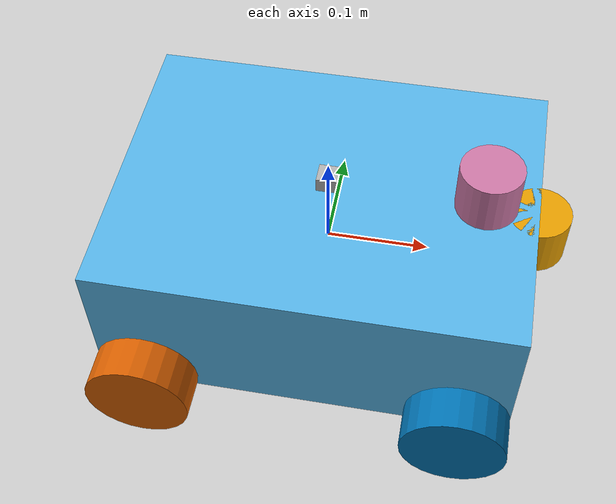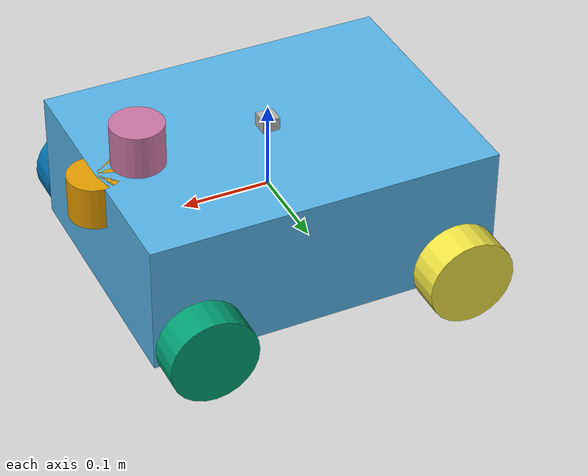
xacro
<?xml version="1.0"?>
<robot name="agric_orion" xmlns:xacro="http://www.ros.org/wiki/xacro">

  <xacro:property name="wheel_radius" value="0.05"/>
  <xacro:property name="wheel_length" value="0.04"/>
  <xacro:property name="wheel_mass" value="0.5"/>
  <xacro:property name="wheel_separation" value="0.35"/>
  <xacro:property name="wheel_base" value="0.3"/>

  <!-- Root link: massless, per KDL requirement that root links carry no inertia -->
  <link name="base_footprint"/>

  <joint name="base_footprint_joint" type="fixed">

    <parent link="base_footprint"/>
    <child link="base_link"/>
    <origin xyz="0 0 0" rpy="0 0 0"/>
  </joint>

  <link name="base_link">

    <visual>
      <origin xyz="0 0 0" rpy="0 0 0"/>
      <geometry><box size="0.4 0.3 0.15"/></geometry>
    </visual>
    <collision>
      <origin xyz="0 0 0" rpy="0 0 0"/>
      <geometry><box size="0.4 0.3 0.15"/></geometry>
    </collision>
    <inertial>
      <mass value="5.0"/>
      <origin xyz="0 0 0"/>
      <inertia ixx="0.05" ixy="0" ixz="0" iyy="0.08" iyz="0" izz="0.1"/>
    </inertial>
  </link>

  <xacro:macro name="wheel" params="prefix reflect x_offset">

    <link name="${prefix}_wheel">
      <visual>
        <origin xyz="0 0 0" rpy="1.5708 0 0"/>
        <geometry><cylinder radius="${wheel_radius}" length="${wheel_length}"/></geometry>
      </visual>
      <collision>
        <origin xyz="0 0 0" rpy="1.5708 0 0"/>
        <geometry><cylinder radius="${wheel_radius}" length="${wheel_length}"/></geometry>
      </collision>
      <inertial>
        <mass value="${wheel_mass}"/>
        <origin xyz="0 0 0"/>
        <inertia ixx="0.001" ixy="0" ixz="0" iyy="0.001" iyz="0" izz="0.001"/>
      </inertial>
    </link>

    <joint name="${prefix}_wheel_joint" type="continuous">

      <parent link="base_link"/>
      <child link="${prefix}_wheel"/>
      <origin xyz="${x_offset} ${reflect * wheel_separation / 2} -0.05" rpy="0 0 0"/>
      <axis xyz="0 1 0"/>
    </joint>

    <gazebo reference="${prefix}_wheel">
      <mu1>1.0</mu1>
      <mu2>1.0</mu2>
    </gazebo>
  </xacro:macro>

  <xacro:wheel prefix="front_left"  reflect="1"  x_offset="${wheel_base/2}"/>
  <xacro:wheel prefix="rear_left"   reflect="1"  x_offset="${-wheel_base/2}"/>

  <xacro:wheel prefix="front_right" reflect="-1" x_offset="${wheel_base/2}"/>
  <xacro:wheel prefix="rear_right"  reflect="-1" x_offset="${-wheel_base/2}"/>

  <gazebo>

    <plugin

        filename="gz-sim-diff-drive-system"
        name="gz::sim::systems::DiffDrive">
        <left_joint>front_left_wheel_joint</left_joint>
        <left_joint>rear_left_wheel_joint</left_joint>
        <right_joint>front_right_wheel_joint</right_joint>
        <right_joint>rear_right_wheel_joint</right_joint>
        <wheel_separation>0.35</wheel_separation>
        <wheel_radius>0.05</wheel_radius>
        <topic>cmd_vel</topic>
        <odom_publish_frequency>30</odom_publish_frequency>
        <odom_topic>odom</odom_topic>
        <tf_topic>/tf</tf_topic>
        <frame_id>odom</frame_id>
        <child_frame_id>base_footprint</child_frame_id>
    </plugin>
    <plugin
        filename="gz-sim-joint-state-publisher-system"
        name="gz::sim::systems::JointStatePublisher">

        <topic>joint_states</topic>

    </plugin>

    <plugin
      filename="gz-sim-imu-system"
      name="gz::sim::systems::Imu">
    </plugin>

  </gazebo>
      <joint name='lidar_joint' type='fixed'>
        <parent link="base_link"/>
        <child link="lidar_link"/>
        <origin xyz="0.15 0 0.1" rpy="0 0 0"/>
      </joint>

      <link name="lidar_link">
        <visual>
          <geometry><cylinder radius="0.03" length="0.05"/></geometry>
        </visual>

        <collision>
          <geometry><cylinder radius="0.03" length="0.05"/></geometry>
        </collision>

        <inertial>
          <mass value="0.05"/>
          <origin xyz="0 0 0"/>
          <inertia ixx="0.00001" ixy="0" ixz="0" iyy="0.00001" iyz="0" izz="0.00001"/>
        </inertial>

      </link>
      <gazebo reference="lidar_link">
        <sensor name="lidar_sensor" type="gpu_lidar">
          <pose>0 0 0 0 0 0</pose>
          <topic>scan</topic>
          <update_rate>10</update_rate>
          <always_on>true</always_on>
          <visualize>true</visualize>
          <gz_frame_id>lidar_link</gz_frame_id>

          <lidar>
            <scan>
              <horizontal>
                <samples>360</samples>
                <min_angle>-3.14159</min_angle>
                <max_angle>3.14159</max_angle>
              </horizontal>

            </scan>

            <range>
              <min>0.12</min>
              <max>10.0</max>
            </range>
          </lidar>
        </sensor>
      </gazebo>

  <joint name="imu_joint" type="fixed">
    <parent link="base_link"/>
    <child link ="imu_link"/>
    <origin xyz="0 0 0.08" rpy="0 0 0"/>
  </joint>

  <link name="imu_link">
    <visual>
      <geometry><box size="0.02 0.02 0.02"/></geometry>
    </visual>

    <collision>
      <geometry><box size="0.02 0.02 0.02"/></geometry>
    </collision>
    <inertial>
      <mass value="0.01"/>
      <origin xyz="0 0 0 "/>
      <inertia ixx="0.000001" ixy="0" ixz="0" iyy="0.000001" iyz="0" izz="0.000001"/>
    </inertial>

  </link>
    <gazebo reference ="imu_link">
      <sensor name="imu" type="imu">
        <topic>imu</topic>
        <update_rate>10</update_rate>
        <always_on>true</always_on>
        <gz_frame_id>imu_link</gz_frame_id>
      </sensor>
    </gazebo>

    <joint name="camera_joint" type="fixed">
      <parent link="base_link"/>
      <child link="camera_link"/>
      <origin xyz= "0.2 0 0.05" rpy="0 0 0"/>
    </joint>

    <link name="camera_link">
      <visual>
        <geometry><cylinder radius="0.03" length="0.05"/></geometry>
      </visual>

      <collision>
        <geometry><cylinder radius="0.03" length="0.05"/></geometry>
      </collision>

      <inertial>
        <mass value="0.01" />
        <origin xyz="0 0 0"/>
        <inertia ixx="0.000001" ixy="0" ixz="0" iyy="0.000001" iyz="0" izz="0.000001"/>
      </inertial>

    </link>

    <gazebo reference="camera_link">
      <sensor name="camera" type="camera">
        <topic>camera</topic>
        <update_rate>10</update_rate>
        <always_on>true</always_on>
        <visualize>true</visualize>
        <gz_frame_id>camera_link</gz_frame_id>
        <camera>
          <horizontal_fov>1.3</horizontal_fov>
          <image>
            <width>640</width>
            <height>480</height>
            <format>R8G8B8</format>
          </image>
          <clip>
            <near>0.08</near>
            <far>80</far>

          </clip>

        </camera>
      </sensor>
    </gazebo>
</robot>
